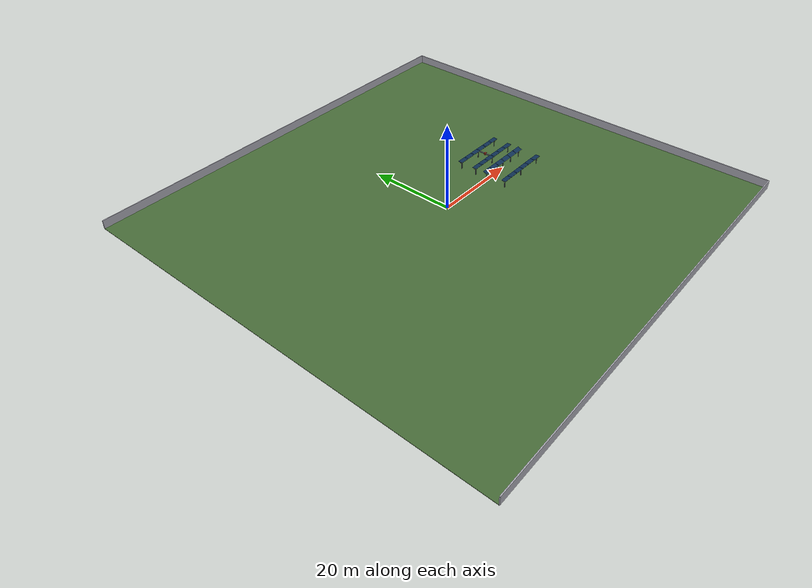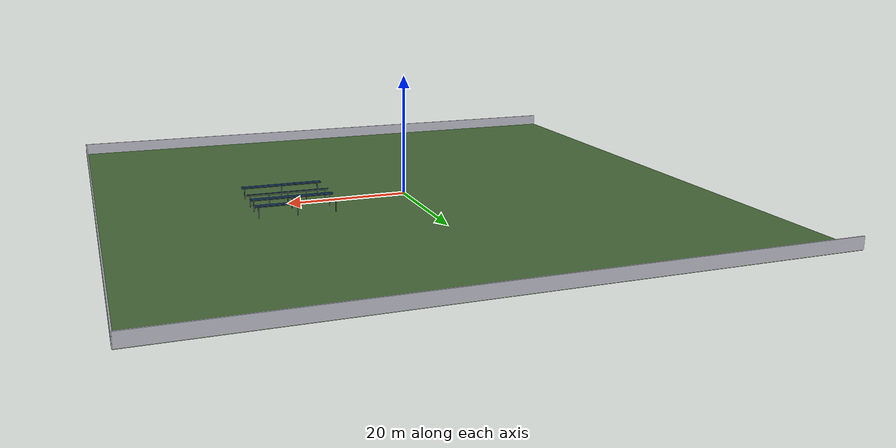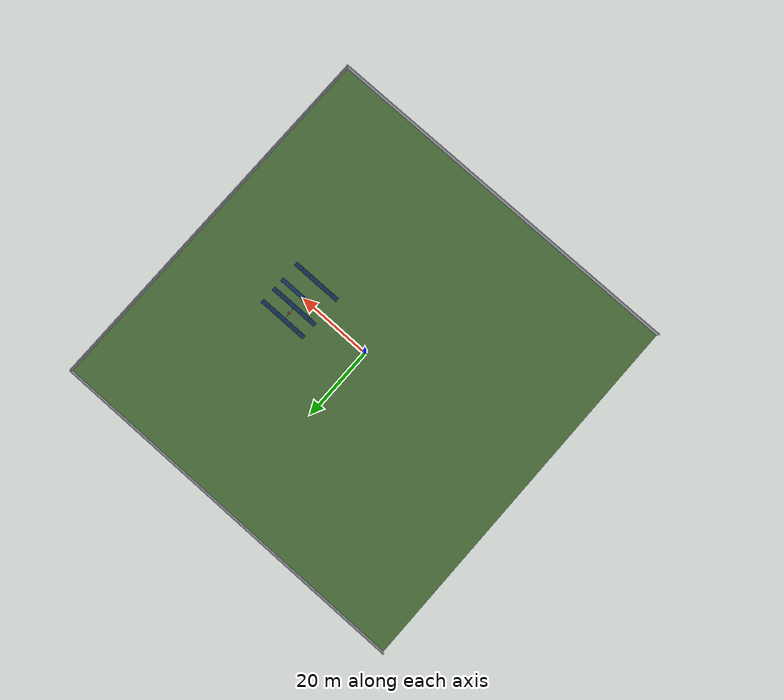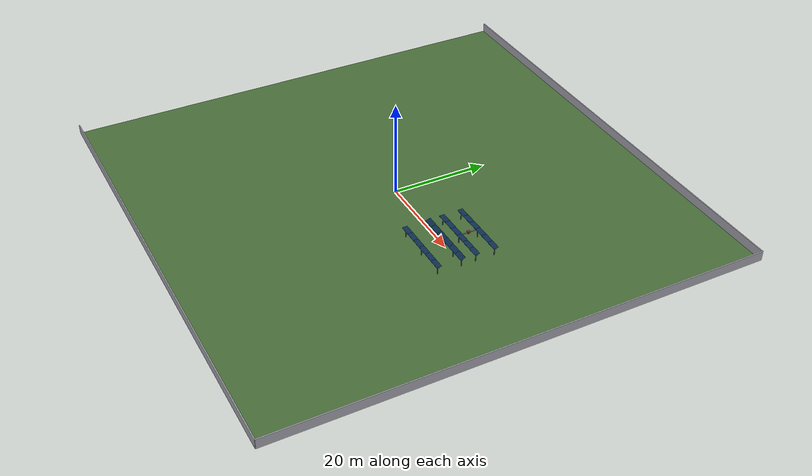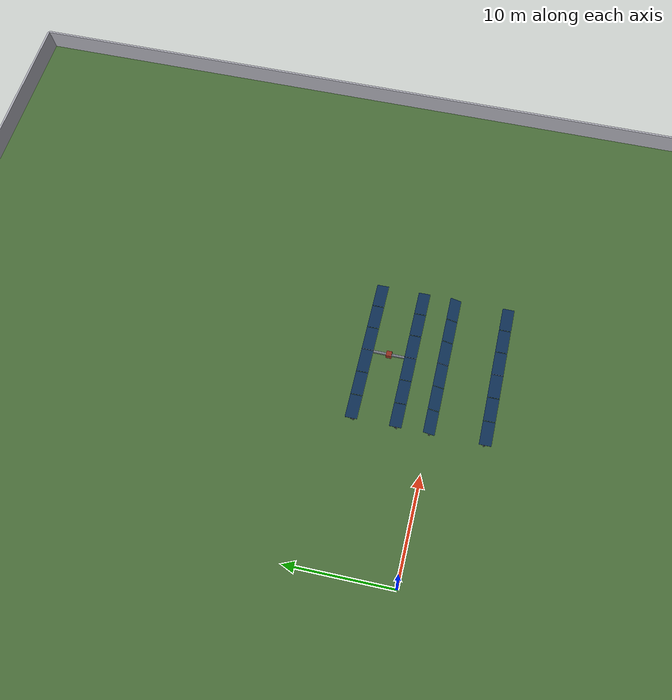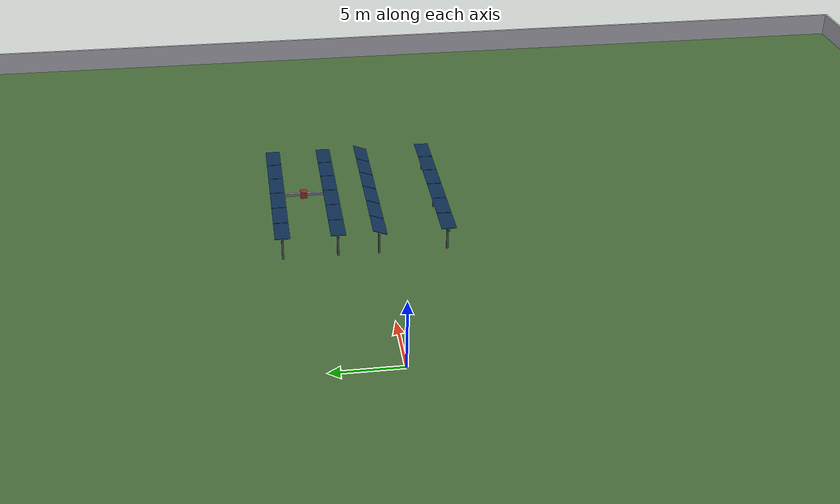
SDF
<?xml version='1.0' encoding='utf-8'?>
<sdf version="1.10">
  <world name="Mundo_uno">
    <plugin filename="gz-sim-physics-system" name="gz::sim::systems::Physics" />
    <plugin filename="gz-sim-user-commands-system" name="gz::sim::systems::UserCommands" />
    <plugin filename="gz-sim-scene-broadcaster-system" name="gz::sim::systems::SceneBroadcaster" />
    <scene>
      <ambient>0.45 0.45 0.45 1</ambient>
      <background>0.70 0.80 0.92 1</background>
      <shadows>true</shadows>
    </scene>
    <light name="sun" type="directional">
      <cast_shadows>true</cast_shadows>
      <pose>0 0 10 0 0 0</pose>
      <diffuse>0.9 0.9 0.9 1</diffuse>
      <specular>0.2 0.2 0.2 1</specular>
      <direction>-0.5 0.3 -1.0</direction>
    </light>
    <model name="generated_ground">
      <static>true</static>
      <pose>0 0 -0.05 0 0 0</pose>
      <link name="ground_link">
        <pose>0 0 0 0 0 0</pose>
        <collision name="collision">
          <geometry>
            <box>
              <size>100 100 0.1</size>
            </box>
          </geometry>
        </collision>
        <visual name="visual">
          <geometry>
            <box>
              <size>100 100 0.1</size>
            </box>
          </geometry>
          <material>
            <ambient>0.28 0.42 0.22 1</ambient>
            <diffuse>0.28 0.42 0.22 1</diffuse>
          </material>
        </visual>
      </link>
    </model>
    <model name="wall_muro_1_dfb0f1e1">
      <static>true</static>
      <pose>0 -50 1 0 0 0</pose>
      <link name="wall_link">
        <pose>0 0 0 0 0 0</pose>
        <collision name="collision">
          <geometry>
            <box>
              <size>100 0.2 2</size>
            </box>
          </geometry>
        </collision>
        <visual name="visual">
          <geometry>
            <box>
              <size>100 0.2 2</size>
            </box>
          </geometry>
          <material>
            <ambient>0.68 0.68 0.72 1</ambient>
            <diffuse>0.68 0.68 0.72 1</diffuse>
          </material>
        </visual>
      </link>
    </model>
    <model name="wall_muro_2_6fbf1026">
      <static>true</static>
      <pose>0 50 1 0 0 0</pose>
      <link name="wall_link">
        <pose>0 0 0 0 0 0</pose>
        <collision name="collision">
          <geometry>
            <box>
              <size>100 0.2 2</size>
            </box>
          </geometry>
        </collision>
        <visual name="visual">
          <geometry>
            <box>
              <size>100 0.2 2</size>
            </box>
          </geometry>
          <material>
            <ambient>0.68 0.68 0.72 1</ambient>
            <diffuse>0.68 0.68 0.72 1</diffuse>
          </material>
        </visual>
      </link>
    </model>
    <model name="wall_muro_3_0a11e30d">
      <static>true</static>
      <pose>50 0 1 0 0 0</pose>
      <link name="wall_link">
        <pose>0 0 0 0 0 0</pose>
        <collision name="collision">
          <geometry>
            <box>
              <size>0.2 100 2</size>
            </box>
          </geometry>
        </collision>
        <visual name="visual">
          <geometry>
            <box>
              <size>0.2 100 2</size>
            </box>
          </geometry>
          <material>
            <ambient>0.68 0.68 0.72 1</ambient>
            <diffuse>0.68 0.68 0.72 1</diffuse>
          </material>
        </visual>
      </link>
    </model>
    <model name="solar_estructura_fija_1_9a2207eb">
      <static>true</static>
      <pose>20 0 0 0 0 0</pose>
      <link name="row_0_post_0_0">
        <pose>-6.175 0 0.9 0 0 0</pose>
        <collision name="collision">
          <geometry>
            <box>
              <size>0.15 0.15 1.8</size>
            </box>
          </geometry>
        </collision>
        <visual name="visual">
          <geometry>
            <box>
              <size>0.15 0.15 1.8</size>
            </box>
          </geometry>
          <material>
            <ambient>0.3 0.32 0.35 1</ambient>
            <diffuse>0.3 0.32 0.35 1</diffuse>
          </material>
        </visual>
      </link>
      <link name="row_0_post_1_1">
        <pose>-3.0875 0 0.9 0 0 0</pose>
        <collision name="collision">
          <geometry>
            <box>
              <size>0.15 0.15 1.8</size>
            </box>
          </geometry>
        </collision>
        <visual name="visual">
          <geometry>
            <box>
              <size>0.15 0.15 1.8</size>
            </box>
          </geometry>
          <material>
            <ambient>0.3 0.32 0.35 1</ambient>
            <diffuse>0.3 0.32 0.35 1</diffuse>
          </material>
        </visual>
      </link>
      <link name="row_0_post_2_2">
        <pose>0 0 0.9 0 0 0</pose>
        <collision name="collision">
          <geometry>
            <box>
              <size>0.15 0.15 1.8</size>
            </box>
          </geometry>
        </collision>
        <visual name="visual">
          <geometry>
            <box>
              <size>0.15 0.15 1.8</size>
            </box>
          </geometry>
          <material>
            <ambient>0.3 0.32 0.35 1</ambient>
            <diffuse>0.3 0.32 0.35 1</diffuse>
          </material>
        </visual>
      </link>
      <link name="row_0_post_3_3">
        <pose>3.0875 0 0.9 0 0 0</pose>
        <collision name="collision">
          <geometry>
            <box>
              <size>0.15 0.15 1.8</size>
            </box>
          </geometry>
        </collision>
        <visual name="visual">
          <geometry>
            <box>
              <size>0.15 0.15 1.8</size>
            </box>
          </geometry>
          <material>
            <ambient>0.3 0.32 0.35 1</ambient>
            <diffuse>0.3 0.32 0.35 1</diffuse>
          </material>
        </visual>
      </link>
      <link name="row_0_post_4_4">
        <pose>6.175 0 0.9 0 0 0</pose>
        <collision name="collision">
          <geometry>
            <box>
              <size>0.15 0.15 1.8</size>
            </box>
          </geometry>
        </collision>
        <visual name="visual">
          <geometry>
            <box>
              <size>0.15 0.15 1.8</size>
            </box>
          </geometry>
          <material>
            <ambient>0.3 0.32 0.35 1</ambient>
            <diffuse>0.3 0.32 0.35 1</diffuse>
          </material>
        </visual>
      </link>
      <link name="row_0_longitudinal_beam_5">
        <pose>0 0 1.8 0 0 0</pose>
        <collision name="collision">
          <geometry>
            <box>
              <size>13.45 0.1 0.1</size>
            </box>
          </geometry>
        </collision>
        <visual name="visual">
          <geometry>
            <box>
              <size>13.45 0.1 0.1</size>
            </box>
          </geometry>
          <material>
            <ambient>0.45 0.47 0.5 1</ambient>
            <diffuse>0.45 0.47 0.5 1</diffuse>
          </material>
        </visual>
      </link>
      <link name="row_0_cross_beam_0_6">
        <pose>-6.175 0 1.88 0.34906585 0 0</pose>
        <collision name="collision">
          <geometry>
            <box>
              <size>0.1 0.99 0.1</size>
            </box>
          </geometry>
        </collision>
        <visual name="visual">
          <geometry>
            <box>
              <size>0.1 0.99 0.1</size>
            </box>
          </geometry>
          <material>
            <ambient>0.45 0.47 0.5 1</ambient>
            <diffuse>0.45 0.47 0.5 1</diffuse>
          </material>
        </visual>
      </link>
      <link name="row_0_cross_beam_1_7">
        <pose>-3.0875 0 1.88 0.34906585 0 0</pose>
        <collision name="collision">
          <geometry>
            <box>
              <size>0.1 0.99 0.1</size>
            </box>
          </geometry>
        </collision>
        <visual name="visual">
          <geometry>
            <box>
              <size>0.1 0.99 0.1</size>
            </box>
          </geometry>
          <material>
            <ambient>0.45 0.47 0.5 1</ambient>
            <diffuse>0.45 0.47 0.5 1</diffuse>
          </material>
        </visual>
      </link>
      <link name="row_0_cross_beam_2_8">
        <pose>0 0 1.88 0.34906585 0 0</pose>
        <collision name="collision">
          <geometry>
            <box>
              <size>0.1 0.99 0.1</size>
            </box>
          </geometry>
        </collision>
        <visual name="visual">
          <geometry>
            <box>
              <size>0.1 0.99 0.1</size>
            </box>
          </geometry>
          <material>
            <ambient>0.45 0.47 0.5 1</ambient>
            <diffuse>0.45 0.47 0.5 1</diffuse>
          </material>
        </visual>
      </link>
      <link name="row_0_cross_beam_3_9">
        <pose>3.0875 0 1.88 0.34906585 0 0</pose>
        <collision name="collision">
          <geometry>
            <box>
              <size>0.1 0.99 0.1</size>
            </box>
          </geometry>
        </collision>
        <visual name="visual">
          <geometry>
            <box>
              <size>0.1 0.99 0.1</size>
            </box>
          </geometry>
          <material>
            <ambient>0.45 0.47 0.5 1</ambient>
            <diffuse>0.45 0.47 0.5 1</diffuse>
          </material>
        </visual>
      </link>
      <link name="row_0_cross_beam_4_10">
        <pose>6.175 0 1.88 0.34906585 0 0</pose>
        <collision name="collision">
          <geometry>
            <box>
              <size>0.1 0.99 0.1</size>
            </box>
          </geometry>
        </collision>
        <visual name="visual">
          <geometry>
            <box>
              <size>0.1 0.99 0.1</size>
            </box>
          </geometry>
          <material>
            <ambient>0.45 0.47 0.5 1</ambient>
            <diffuse>0.45 0.47 0.5 1</diffuse>
          </material>
        </visual>
      </link>
      <link name="row_0_module_0_11">
        <pose>-5.625 0 2 0.34906585 0 0</pose>
        <collision name="collision">
          <geometry>
            <box>
              <size>2.2 1.1 0.04</size>
            </box>
          </geometry>
        </collision>
        <visual name="visual">
          <geometry>
            <box>
              <size>2.2 1.1 0.04</size>
            </box>
          </geometry>
          <material>
            <ambient>0.05 0.18 0.32 1</ambient>
            <diffuse>0.05 0.18 0.32 1</diffuse>
          </material>
        </visual>
      </link>
      <link name="row_0_module_1_12">
        <pose>-3.375 0 2 0.34906585 0 0</pose>
        <collision name="collision">
          <geometry>
            <box>
              <size>2.2 1.1 0.04</size>
            </box>
          </geometry>
        </collision>
        <visual name="visual">
          <geometry>
            <box>
              <size>2.2 1.1 0.04</size>
            </box>
          </geometry>
          <material>
            <ambient>0.05 0.18 0.32 1</ambient>
            <diffuse>0.05 0.18 0.32 1</diffuse>
          </material>
        </visual>
      </link>
      <link name="row_0_module_2_13">
        <pose>-1.125 0 2 0.34906585 0 0</pose>
        <collision name="collision">
          <geometry>
            <box>
              <size>2.2 1.1 0.04</size>
            </box>
          </geometry>
        </collision>
        <visual name="visual">
          <geometry>
            <box>
              <size>2.2 1.1 0.04</size>
            </box>
          </geometry>
          <material>
            <ambient>0.05 0.18 0.32 1</ambient>
            <diffuse>0.05 0.18 0.32 1</diffuse>
          </material>
        </visual>
      </link>
      <link name="row_0_module_3_14">
        <pose>1.125 0 2 0.34906585 0 0</pose>
        <collision name="collision">
          <geometry>
            <box>
              <size>2.2 1.1 0.04</size>
            </box>
          </geometry>
        </collision>
        <visual name="visual">
          <geometry>
            <box>
              <size>2.2 1.1 0.04</size>
            </box>
          </geometry>
          <material>
            <ambient>0.05 0.18 0.32 1</ambient>
            <diffuse>0.05 0.18 0.32 1</diffuse>
          </material>
        </visual>
      </link>
      <link name="row_0_module_4_15">
        <pose>3.375 0 2 0.34906585 0 0</pose>
        <collision name="collision">
          <geometry>
            <box>
              <size>2.2 1.1 0.04</size>
            </box>
          </geometry>
        </collision>
        <visual name="visual">
          <geometry>
            <box>
              <size>2.2 1.1 0.04</size>
            </box>
          </geometry>
          <material>
            <ambient>0.05 0.18 0.32 1</ambient>
            <diffuse>0.05 0.18 0.32 1</diffuse>
          </material>
        </visual>
      </link>
      <link name="row_0_module_5_16">
        <pose>5.625 0 2 0.34906585 0 0</pose>
        <collision name="collision">
          <geometry>
            <box>
              <size>2.2 1.1 0.04</size>
            </box>
          </geometry>
        </collision>
        <visual name="visual">
          <geometry>
            <box>
              <size>2.2 1.1 0.04</size>
            </box>
          </geometry>
          <material>
            <ambient>0.05 0.18 0.32 1</ambient>
            <diffuse>0.05 0.18 0.32 1</diffuse>
          </material>
        </visual>
      </link>
    </model>
    <model name="solar_seguidor_mono_fila_1_ad2d953c">
      <static>true</static>
      <pose>20 -5 0 0 0 0</pose>
      <link name="row_0_post_0_0">
        <pose>-6.175 0 0.9 0 0 0</pose>
        <collision name="collision">
          <geometry>
            <box>
              <size>0.15 0.15 1.8</size>
            </box>
          </geometry>
        </collision>
        <visual name="visual">
          <geometry>
            <box>
              <size>0.15 0.15 1.8</size>
            </box>
          </geometry>
          <material>
            <ambient>0.3 0.32 0.35 1</ambient>
            <diffuse>0.3 0.32 0.35 1</diffuse>
          </material>
        </visual>
      </link>
      <link name="row_0_post_1_1">
        <pose>0 0 0.9 0 0 0</pose>
        <collision name="collision">
          <geometry>
            <box>
              <size>0.15 0.15 1.8</size>
            </box>
          </geometry>
        </collision>
        <visual name="visual">
          <geometry>
            <box>
              <size>0.15 0.15 1.8</size>
            </box>
          </geometry>
          <material>
            <ambient>0.3 0.32 0.35 1</ambient>
            <diffuse>0.3 0.32 0.35 1</diffuse>
          </material>
        </visual>
      </link>
      <link name="row_0_post_2_2">
        <pose>6.175 0 0.9 0 0 0</pose>
        <collision name="collision">
          <geometry>
            <box>
              <size>0.15 0.15 1.8</size>
            </box>
          </geometry>
        </collision>
        <visual name="visual">
          <geometry>
            <box>
              <size>0.15 0.15 1.8</size>
            </box>
          </geometry>
          <material>
            <ambient>0.3 0.32 0.35 1</ambient>
            <diffuse>0.3 0.32 0.35 1</diffuse>
          </material>
        </visual>
      </link>
      <link name="row_0_torque_tube_3">
        <pose>0 0 1.8 0 1.5707963 0</pose>
        <collision name="collision">
          <geometry>
            <cylinder>
              <radius>0.08</radius>
              <length>13.45</length>
            </cylinder>
          </geometry>
        </collision>
        <visual name="visual">
          <geometry>
            <cylinder>
              <radius>0.08</radius>
              <length>13.45</length>
            </cylinder>
          </geometry>
          <material>
            <ambient>0.25 0.27 0.3 1</ambient>
            <diffuse>0.25 0.27 0.3 1</diffuse>
          </material>
        </visual>
      </link>
      <link name="row_0_cross_beam_0_4">
        <pose>-6.175 0 1.88 0 0 0</pose>
        <collision name="collision">
          <geometry>
            <box>
              <size>0.1 0.99 0.1</size>
            </box>
          </geometry>
        </collision>
        <visual name="visual">
          <geometry>
            <box>
              <size>0.1 0.99 0.1</size>
            </box>
          </geometry>
          <material>
            <ambient>0.45 0.47 0.5 1</ambient>
            <diffuse>0.45 0.47 0.5 1</diffuse>
          </material>
        </visual>
      </link>
      <link name="row_0_cross_beam_1_5">
        <pose>0 0 1.88 0 0 0</pose>
        <collision name="collision">
          <geometry>
            <box>
              <size>0.1 0.99 0.1</size>
            </box>
          </geometry>
        </collision>
        <visual name="visual">
          <geometry>
            <box>
              <size>0.1 0.99 0.1</size>
            </box>
          </geometry>
          <material>
            <ambient>0.45 0.47 0.5 1</ambient>
            <diffuse>0.45 0.47 0.5 1</diffuse>
          </material>
        </visual>
      </link>
      <link name="row_0_cross_beam_2_6">
        <pose>6.175 0 1.88 0 0 0</pose>
        <collision name="collision">
          <geometry>
            <box>
              <size>0.1 0.99 0.1</size>
            </box>
          </geometry>
        </collision>
        <visual name="visual">
          <geometry>
            <box>
              <size>0.1 0.99 0.1</size>
            </box>
          </geometry>
          <material>
            <ambient>0.45 0.47 0.5 1</ambient>
            <diffuse>0.45 0.47 0.5 1</diffuse>
          </material>
        </visual>
      </link>
      <link name="row_0_module_0_7">
        <pose>-5.625 0 2 0 0 0</pose>
        <collision name="collision">
          <geometry>
            <box>
              <size>2.2 1.1 0.04</size>
            </box>
          </geometry>
        </collision>
        <visual name="visual">
          <geometry>
            <box>
              <size>2.2 1.1 0.04</size>
            </box>
          </geometry>
          <material>
            <ambient>0.05 0.18 0.32 1</ambient>
            <diffuse>0.05 0.18 0.32 1</diffuse>
          </material>
        </visual>
      </link>
      <link name="row_0_module_1_8">
        <pose>-3.375 0 2 0 0 0</pose>
        <collision name="collision">
          <geometry>
            <box>
              <size>2.2 1.1 0.04</size>
            </box>
          </geometry>
        </collision>
        <visual name="visual">
          <geometry>
            <box>
              <size>2.2 1.1 0.04</size>
            </box>
          </geometry>
          <material>
            <ambient>0.05 0.18 0.32 1</ambient>
            <diffuse>0.05 0.18 0.32 1</diffuse>
          </material>
        </visual>
      </link>
      <link name="row_0_module_2_9">
        <pose>-1.125 0 2 0 0 0</pose>
        <collision name="collision">
          <geometry>
            <box>
              <size>2.2 1.1 0.04</size>
            </box>
          </geometry>
        </collision>
        <visual name="visual">
          <geometry>
            <box>
              <size>2.2 1.1 0.04</size>
            </box>
          </geometry>
          <material>
            <ambient>0.05 0.18 0.32 1</ambient>
            <diffuse>0.05 0.18 0.32 1</diffuse>
          </material>
        </visual>
      </link>
      <link name="row_0_module_3_10">
        <pose>1.125 0 2 0 0 0</pose>
        <collision name="collision">
          <geometry>
            <box>
              <size>2.2 1.1 0.04</size>
            </box>
          </geometry>
        </collision>
        <visual name="visual">
          <geometry>
            <box>
              <size>2.2 1.1 0.04</size>
            </box>
          </geometry>
          <material>
            <ambient>0.05 0.18 0.32 1</ambient>
            <diffuse>0.05 0.18 0.32 1</diffuse>
          </material>
        </visual>
      </link>
      <link name="row_0_module_4_11">
        <pose>3.375 0 2 0 0 0</pose>
        <collision name="collision">
          <geometry>
            <box>
              <size>2.2 1.1 0.04</size>
            </box>
          </geometry>
        </collision>
        <visual name="visual">
          <geometry>
            <box>
              <size>2.2 1.1 0.04</size>
            </box>
          </geometry>
          <material>
            <ambient>0.05 0.18 0.32 1</ambient>
            <diffuse>0.05 0.18 0.32 1</diffuse>
          </material>
        </visual>
      </link>
      <link name="row_0_module_5_12">
        <pose>5.625 0 2 0 0 0</pose>
        <collision name="collision">
          <geometry>
            <box>
              <size>2.2 1.1 0.04</size>
            </box>
          </geometry>
        </collision>
        <visual name="visual">
          <geometry>
            <box>
              <size>2.2 1.1 0.04</size>
            </box>
          </geometry>
          <material>
            <ambient>0.05 0.18 0.32 1</ambient>
            <diffuse>0.05 0.18 0.32 1</diffuse>
          </material>
        </visual>
      </link>
    </model>
    <model name="solar_seguidor_dual_row_1_0a794875">
      <static>true</static>
      <pose>20 5 0 0 0 0</pose>
      <link name="row_0_post_0_0">
        <pose>-6.175 -2 0.9 0 0 0</pose>
        <collision name="collision">
          <geometry>
            <box>
              <size>0.15 0.15 1.8</size>
            </box>
          </geometry>
        </collision>
        <visual name="visual">
          <geometry>
            <box>
              <size>0.15 0.15 1.8</size>
            </box>
          </geometry>
          <material>
            <ambient>0.3 0.32 0.35 1</ambient>
            <diffuse>0.3 0.32 0.35 1</diffuse>
          </material>
        </visual>
      </link>
      <link name="row_0_post_1_1">
        <pose>0 -2 0.9 0 0 0</pose>
        <collision name="collision">
          <geometry>
            <box>
              <size>0.15 0.15 1.8</size>
            </box>
          </geometry>
        </collision>
        <visual name="visual">
          <geometry>
            <box>
              <size>0.15 0.15 1.8</size>
            </box>
          </geometry>
          <material>
            <ambient>0.3 0.32 0.35 1</ambient>
            <diffuse>0.3 0.32 0.35 1</diffuse>
          </material>
        </visual>
      </link>
      <link name="row_0_post_2_2">
        <pose>6.175 -2 0.9 0 0 0</pose>
        <collision name="collision">
          <geometry>
            <box>
              <size>0.15 0.15 1.8</size>
            </box>
          </geometry>
        </collision>
        <visual name="visual">
          <geometry>
            <box>
              <size>0.15 0.15 1.8</size>
            </box>
          </geometry>
          <material>
            <ambient>0.3 0.32 0.35 1</ambient>
            <diffuse>0.3 0.32 0.35 1</diffuse>
          </material>
        </visual>
      </link>
      <link name="row_0_torque_tube_3">
        <pose>0 -2 1.8 0 1.5707963 0</pose>
        <collision name="collision">
          <geometry>
            <cylinder>
              <radius>0.08</radius>
              <length>13.45</length>
            </cylinder>
          </geometry>
        </collision>
        <visual name="visual">
          <geometry>
            <cylinder>
              <radius>0.08</radius>
              <length>13.45</length>
            </cylinder>
          </geometry>
          <material>
            <ambient>0.25 0.27 0.3 1</ambient>
            <diffuse>0.25 0.27 0.3 1</diffuse>
          </material>
        </visual>
      </link>
      <link name="row_0_cross_beam_0_4">
        <pose>-6.175 -2 1.88 0 0 0</pose>
        <collision name="collision">
          <geometry>
            <box>
              <size>0.1 0.99 0.1</size>
            </box>
          </geometry>
        </collision>
        <visual name="visual">
          <geometry>
            <box>
              <size>0.1 0.99 0.1</size>
            </box>
          </geometry>
          <material>
            <ambient>0.45 0.47 0.5 1</ambient>
            <diffuse>0.45 0.47 0.5 1</diffuse>
          </material>
        </visual>
      </link>
      <link name="row_0_cross_beam_1_5">
        <pose>0 -2 1.88 0 0 0</pose>
        <collision name="collision">
          <geometry>
            <box>
              <size>0.1 0.99 0.1</size>
            </box>
          </geometry>
        </collision>
        <visual name="visual">
          <geometry>
            <box>
              <size>0.1 0.99 0.1</size>
            </box>
          </geometry>
          <material>
            <ambient>0.45 0.47 0.5 1</ambient>
            <diffuse>0.45 0.47 0.5 1</diffuse>
          </material>
        </visual>
      </link>
      <link name="row_0_cross_beam_2_6">
        <pose>6.175 -2 1.88 0 0 0</pose>
        <collision name="collision">
          <geometry>
            <box>
              <size>0.1 0.99 0.1</size>
            </box>
          </geometry>
        </collision>
        <visual name="visual">
          <geometry>
            <box>
              <size>0.1 0.99 0.1</size>
            </box>
          </geometry>
          <material>
            <ambient>0.45 0.47 0.5 1</ambient>
            <diffuse>0.45 0.47 0.5 1</diffuse>
          </material>
        </visual>
      </link>
      <link name="row_0_module_0_7">
        <pose>-5.625 -2 2 0 0 0</pose>
        <collision name="collision">
          <geometry>
            <box>
              <size>2.2 1.1 0.04</size>
            </box>
          </geometry>
        </collision>
        <visual name="visual">
          <geometry>
            <box>
              <size>2.2 1.1 0.04</size>
            </box>
          </geometry>
          <material>
            <ambient>0.05 0.18 0.32 1</ambient>
            <diffuse>0.05 0.18 0.32 1</diffuse>
          </material>
        </visual>
      </link>
      <link name="row_0_module_1_8">
        <pose>-3.375 -2 2 0 0 0</pose>
        <collision name="collision">
          <geometry>
            <box>
              <size>2.2 1.1 0.04</size>
            </box>
          </geometry>
        </collision>
        <visual name="visual">
          <geometry>
            <box>
              <size>2.2 1.1 0.04</size>
            </box>
          </geometry>
          <material>
            <ambient>0.05 0.18 0.32 1</ambient>
            <diffuse>0.05 0.18 0.32 1</diffuse>
          </material>
        </visual>
      </link>
      <link name="row_0_module_2_9">
        <pose>-1.125 -2 2 0 0 0</pose>
        <collision name="collision">
          <geometry>
            <box>
              <size>2.2 1.1 0.04</size>
            </box>
          </geometry>
        </collision>
        <visual name="visual">
          <geometry>
            <box>
              <size>2.2 1.1 0.04</size>
            </box>
          </geometry>
          <material>
            <ambient>0.05 0.18 0.32 1</ambient>
            <diffuse>0.05 0.18 0.32 1</diffuse>
          </material>
        </visual>
      </link>
      <link name="row_0_module_3_10">
        <pose>1.125 -2 2 0 0 0</pose>
        <collision name="collision">
          <geometry>
            <box>
              <size>2.2 1.1 0.04</size>
            </box>
          </geometry>
        </collision>
        <visual name="visual">
          <geometry>
            <box>
              <size>2.2 1.1 0.04</size>
            </box>
          </geometry>
          <material>
            <ambient>0.05 0.18 0.32 1</ambient>
            <diffuse>0.05 0.18 0.32 1</diffuse>
          </material>
        </visual>
      </link>
      <link name="row_0_module_4_11">
        <pose>3.375 -2 2 0 0 0</pose>
        <collision name="collision">
          <geometry>
            <box>
              <size>2.2 1.1 0.04</size>
            </box>
          </geometry>
        </collision>
        <visual name="visual">
          <geometry>
            <box>
              <size>2.2 1.1 0.04</size>
            </box>
          </geometry>
          <material>
            <ambient>0.05 0.18 0.32 1</ambient>
            <diffuse>0.05 0.18 0.32 1</diffuse>
          </material>
        </visual>
      </link>
      <link name="row_0_module_5_12">
        <pose>5.625 -2 2 0 0 0</pose>
        <collision name="collision">
          <geometry>
            <box>
              <size>2.2 1.1 0.04</size>
            </box>
          </geometry>
        </collision>
        <visual name="visual">
          <geometry>
            <box>
              <size>2.2 1.1 0.04</size>
            </box>
          </geometry>
          <material>
            <ambient>0.05 0.18 0.32 1</ambient>
            <diffuse>0.05 0.18 0.32 1</diffuse>
          </material>
        </visual>
      </link>
      <link name="row_1_post_0_13">
        <pose>-6.175 2 0.9 0 0 0</pose>
        <collision name="collision">
          <geometry>
            <box>
              <size>0.15 0.15 1.8</size>
            </box>
          </geometry>
        </collision>
        <visual name="visual">
          <geometry>
            <box>
              <size>0.15 0.15 1.8</size>
            </box>
          </geometry>
          <material>
            <ambient>0.3 0.32 0.35 1</ambient>
            <diffuse>0.3 0.32 0.35 1</diffuse>
          </material>
        </visual>
      </link>
      <link name="row_1_post_1_14">
        <pose>0 2 0.9 0 0 0</pose>
        <collision name="collision">
          <geometry>
            <box>
              <size>0.15 0.15 1.8</size>
            </box>
          </geometry>
        </collision>
        <visual name="visual">
          <geometry>
            <box>
              <size>0.15 0.15 1.8</size>
            </box>
          </geometry>
          <material>
            <ambient>0.3 0.32 0.35 1</ambient>
            <diffuse>0.3 0.32 0.35 1</diffuse>
          </material>
        </visual>
      </link>
      <link name="row_1_post_2_15">
        <pose>6.175 2 0.9 0 0 0</pose>
        <collision name="collision">
          <geometry>
            <box>
              <size>0.15 0.15 1.8</size>
            </box>
          </geometry>
        </collision>
        <visual name="visual">
          <geometry>
            <box>
              <size>0.15 0.15 1.8</size>
            </box>
          </geometry>
          <material>
            <ambient>0.3 0.32 0.35 1</ambient>
            <diffuse>0.3 0.32 0.35 1</diffuse>
          </material>
        </visual>
      </link>
      <link name="row_1_torque_tube_16">
        <pose>0 2 1.8 0 1.5707963 0</pose>
        <collision name="collision">
          <geometry>
            <cylinder>
              <radius>0.08</radius>
              <length>13.45</length>
            </cylinder>
          </geometry>
        </collision>
        <visual name="visual">
          <geometry>
            <cylinder>
              <radius>0.08</radius>
              <length>13.45</length>
            </cylinder>
          </geometry>
          <material>
            <ambient>0.25 0.27 0.3 1</ambient>
            <diffuse>0.25 0.27 0.3 1</diffuse>
          </material>
        </visual>
      </link>
      <link name="row_1_cross_beam_0_17">
        <pose>-6.175 2 1.88 0 0 0</pose>
        <collision name="collision">
          <geometry>
            <box>
              <size>0.1 0.99 0.1</size>
            </box>
          </geometry>
        </collision>
        <visual name="visual">
          <geometry>
            <box>
              <size>0.1 0.99 0.1</size>
            </box>
          </geometry>
          <material>
            <ambient>0.45 0.47 0.5 1</ambient>
            <diffuse>0.45 0.47 0.5 1</diffuse>
          </material>
        </visual>
      </link>
      <link name="row_1_cross_beam_1_18">
        <pose>0 2 1.88 0 0 0</pose>
        <collision name="collision">
          <geometry>
            <box>
              <size>0.1 0.99 0.1</size>
            </box>
          </geometry>
        </collision>
        <visual name="visual">
          <geometry>
            <box>
              <size>0.1 0.99 0.1</size>
            </box>
          </geometry>
          <material>
            <ambient>0.45 0.47 0.5 1</ambient>
            <diffuse>0.45 0.47 0.5 1</diffuse>
          </material>
        </visual>
      </link>
      <link name="row_1_cross_beam_2_19">
        <pose>6.175 2 1.88 0 0 0</pose>
        <collision name="collision">
          <geometry>
            <box>
              <size>0.1 0.99 0.1</size>
            </box>
          </geometry>
        </collision>
        <visual name="visual">
          <geometry>
            <box>
              <size>0.1 0.99 0.1</size>
            </box>
          </geometry>
          <material>
            <ambient>0.45 0.47 0.5 1</ambient>
            <diffuse>0.45 0.47 0.5 1</diffuse>
          </material>
        </visual>
      </link>
      <link name="row_1_module_0_20">
        <pose>-5.625 2 2 0 0 0</pose>
        <collision name="collision">
          <geometry>
            <box>
              <size>2.2 1.1 0.04</size>
            </box>
          </geometry>
        </collision>
        <visual name="visual">
          <geometry>
            <box>
              <size>2.2 1.1 0.04</size>
            </box>
          </geometry>
          <material>
            <ambient>0.05 0.18 0.32 1</ambient>
            <diffuse>0.05 0.18 0.32 1</diffuse>
          </material>
        </visual>
      </link>
      <link name="row_1_module_1_21">
        <pose>-3.375 2 2 0 0 0</pose>
        <collision name="collision">
          <geometry>
            <box>
              <size>2.2 1.1 0.04</size>
            </box>
          </geometry>
        </collision>
        <visual name="visual">
          <geometry>
            <box>
              <size>2.2 1.1 0.04</size>
            </box>
          </geometry>
          <material>
            <ambient>0.05 0.18 0.32 1</ambient>
            <diffuse>0.05 0.18 0.32 1</diffuse>
          </material>
        </visual>
      </link>
      <link name="row_1_module_2_22">
        <pose>-1.125 2 2 0 0 0</pose>
        <collision name="collision">
          <geometry>
            <box>
              <size>2.2 1.1 0.04</size>
            </box>
          </geometry>
        </collision>
        <visual name="visual">
          <geometry>
            <box>
              <size>2.2 1.1 0.04</size>
            </box>
          </geometry>
          <material>
            <ambient>0.05 0.18 0.32 1</ambient>
            <diffuse>0.05 0.18 0.32 1</diffuse>
          </material>
        </visual>
      </link>
      <link name="row_1_module_3_23">
        <pose>1.125 2 2 0 0 0</pose>
        <collision name="collision">
          <geometry>
            <box>
              <size>2.2 1.1 0.04</size>
            </box>
          </geometry>
        </collision>
        <visual name="visual">
          <geometry>
            <box>
              <size>2.2 1.1 0.04</size>
            </box>
          </geometry>
          <material>
            <ambient>0.05 0.18 0.32 1</ambient>
            <diffuse>0.05 0.18 0.32 1</diffuse>
          </material>
        </visual>
      </link>
      <link name="row_1_module_4_24">
        <pose>3.375 2 2 0 0 0</pose>
        <collision name="collision">
          <geometry>
            <box>
              <size>2.2 1.1 0.04</size>
            </box>
          </geometry>
        </collision>
        <visual name="visual">
          <geometry>
            <box>
              <size>2.2 1.1 0.04</size>
            </box>
          </geometry>
          <material>
            <ambient>0.05 0.18 0.32 1</ambient>
            <diffuse>0.05 0.18 0.32 1</diffuse>
          </material>
        </visual>
      </link>
      <link name="row_1_module_5_25">
        <pose>5.625 2 2 0 0 0</pose>
        <collision name="collision">
          <geometry>
            <box>
              <size>2.2 1.1 0.04</size>
            </box>
          </geometry>
        </collision>
        <visual name="visual">
          <geometry>
            <box>
              <size>2.2 1.1 0.04</size>
            </box>
          </geometry>
          <material>
            <ambient>0.05 0.18 0.32 1</ambient>
            <diffuse>0.05 0.18 0.32 1</diffuse>
          </material>
        </visual>
      </link>
      <link name="dual_connection_26">
        <pose>0 0 1.8 0 0 0</pose>
        <collision name="collision">
          <geometry>
            <box>
              <size>0.2 4 0.2</size>
            </box>
          </geometry>
        </collision>
        <visual name="visual">
          <geometry>
            <box>
              <size>0.2 4 0.2</size>
            </box>
          </geometry>
          <material>
            <ambient>0.45 0.47 0.5 1</ambient>
            <diffuse>0.45 0.47 0.5 1</diffuse>
          </material>
        </visual>
      </link>
      <link name="dual_motor_27">
        <pose>0 0 1.8 0 0 0</pose>
        <collision name="collision">
          <geometry>
            <box>
              <size>0.5 0.5 0.5</size>
            </box>
          </geometry>
        </collision>
        <visual name="visual">
          <geometry>
            <box>
              <size>0.5 0.5 0.5</size>
            </box>
          </geometry>
          <material>
            <ambient>0.55 0.18 0.12 1</ambient>
            <diffuse>0.55 0.18 0.12 1</diffuse>
          </material>
        </visual>
      </link>
    </model>
  </world>
</sdf>
